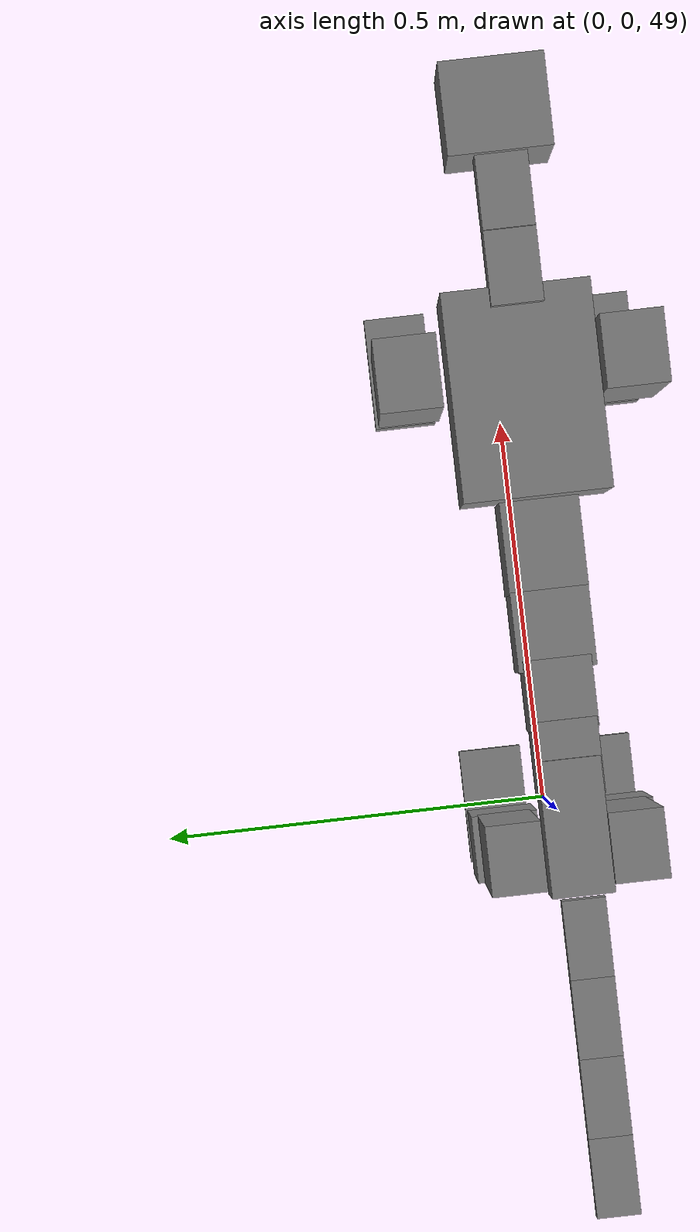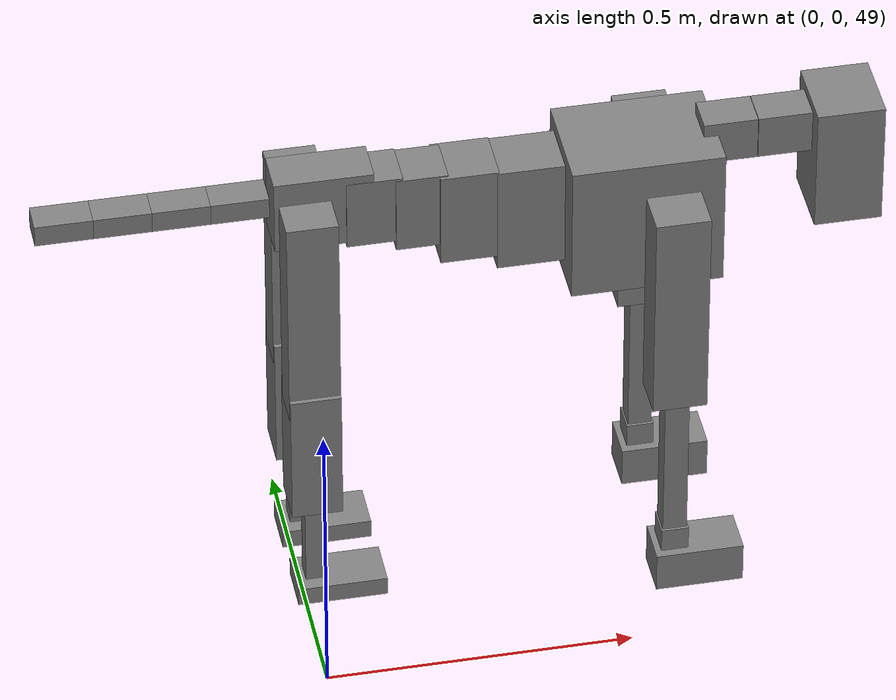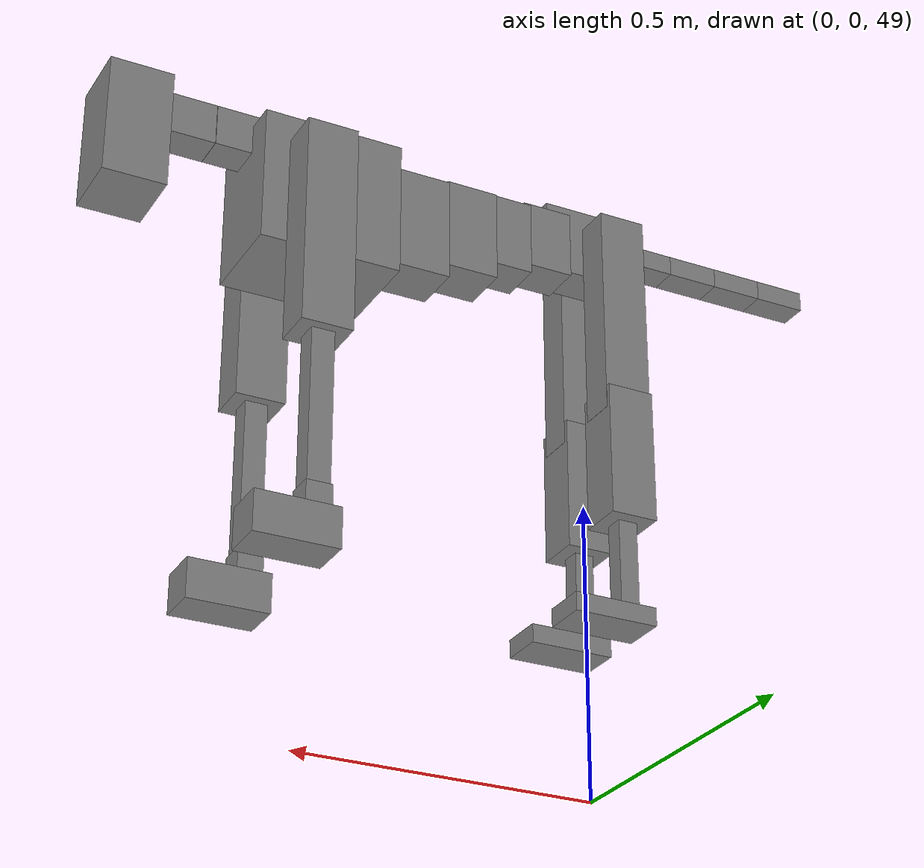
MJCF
<mujoco model="dog">

    <default>
        <joint armature="0.02" stiffness="1" damping="0.2" limited="true"/>
        <geom condim="3" friction="1 0.05 0.05" margin="0.01"/>
        <motor ctrllimited="true" ctrlrange="-1.0 1.0" forcelimited="true" gear="50"/>
    </default>

    <compiler inertiafromgeom="true" angle="radian"/>

    <option timestep="0.016" iterations="50" tolerance="1e-10" solver="Newton" jacobian="dense" cone="pyramidal"/>

    <size nconmax="20000" njmax="60000" nstack="5000000"/>
    <visual>
        <map force="0.1" zfar="30"/>
        <rgba haze="0.15 0.25 0.35 1"/>
        <quality shadowsize="2048"/>
        <global offwidth="800" offheight="800"/>
    </visual>

    <asset>
        <texture type="skybox" builtin="gradient" rgb1="0.3 0.5 0.7" rgb2="0 0 0" width="512" height="512"/>
        <texture name="texplane" type="2d" builtin="checker" rgb1=".2 .3 .4" rgb2=".1 0.15 0.2" width="512" height="512"
                 mark="cross" markrgb=".8 .8 .8"/>
        <texture name="texgeom" type="cube" builtin="flat" mark="cross" width="127" height="1278" rgb1="0.8 0.6 0.4"
                 rgb2="0.8 0.6 0.4" markrgb="1 1 1" random="0.01"/>

        <material name="matplane" reflectance="0.3" texture="texplane" texrepeat="1 1" texuniform="true"/>
        <material name="matgeom" texture="texgeom" texuniform="true" rgba="0.8 0.6 .4 1"/>
    </asset>

    <worldbody>
        <geom name="floor" pos="0 0 0" size="0 0 .25" type="plane" material="matplane" condim="3"/>

        <light directional="false" diffuse=".2 .2 .2" specular="0 0 0" pos="0 0 5" dir="0 0 -1" castshadow="false"/>
        <light mode="targetbodycom" target="torso" directional="false" diffuse=".8 .8 .8" specular="0.3 0.3 0.3"
               pos="0 0 4.0" dir="0 0 -1"/>

        <body name="root" pos="0 0 50">
            <freejoint name="root_1"/>
            <geom type="box" pos="0 0 -0.02" size="0.0774  0.0358  0.063" density="2030"/>

            <body name="spine1" pos="0.054 0 0">
                <joint name="spine1_y" axis="0 1 0" range="0 0.7" limited="true"/>
                <geom type="box" pos="0.02375 0 -0.03" size="0.04375  0.0375  0.05985" density="2030"/>

                <body name="spine2" pos="0.0612 0 0">
                    <joint name="spine2_y" axis="0 1 0" range="-0.15 0.15" limited="true"/>
                    <geom type="box" pos="0.03555  0  -0.04" size="0.04055  0.039  0.06615" density="2030"/>

                    <body name="spine3" pos="0.0730 0 0">
                        <joint name="spine3_y" axis="0 1 0" range="-0.15 0.15" limited="true"/>
                        <geom type="box" pos="0.03555  0  -0.057" size="0.04555  0.0445  0.081" density="2030"/>

                        <body name="spine4" pos="0.0780 0 0">
                            <joint name="spine4_y" axis="0 1 0" range="-0.15 0.15" limited="true"/>
                            <geom type="box" pos="0.05265  0  -0.07" size="0.05265  0.045  0.09135" density="2030"/>

                            <body name="torso" pos="0.1082 0 0">
                                <joint name="torso_y" axis="0 1 0" range="-0.15 0.15" limited="true"/>
                                <geom type="box" pos="0.11925  0  -0.085" size="0.11925  0.085  0.11745"
                                      density="2030"/>

                                <body name="neck1" pos="0.2160  0   0.0180">
                                    <joint name="neck1_y" axis="0 1 0" range="-1.2  -1" limited="true"/>
                                    <geom type="box" pos="0.0423  0  0" size="0.0423  0.03  0.036" density="2325"/>

                                    <body name="neck2" pos="0.0853  0  0">
                                        <joint name="neck2_y" axis="0 1 0" range="0.1  0" limited="true"/>
                                        <geom type="box" pos="0.0423  0  0" size="0.0423  0.03  0.036" density="2325"/>

                                        <body name="head" pos="0.0853  0  0">
                                            <joint name="head_y" axis="0 1 0" range="-0.3  -0.2" limited="true"/>
                                            <geom type="box" pos="0.0531  0  -0.055" size="0.0531  0.06  0.1044"
                                                  density="4030"/>

                                        </body>
                                    </body>
                                </body>

                                <body name="front_shoulder" pos="0.156  0   -0.0480">
                                    <joint name="front_shoulder_y" axis="0 1 0" range="-1 1.5" limited="true"/>
                                    <geom type="box" pos="0 0.13 -0.1549" size="0.0428  0.0366  0.1816" density="1158"/>
                                    <geom type="box" pos="0 -0.13 -0.1549" size="0.0428  0.0366  0.1816"
                                          density="1158"/>

                                    <body name="front_elbow" pos="0  0  -0.3099">
                                        <joint name="front_elbow_y" axis="0 1 0" range="-2 0" limited="true"/>
                                        <geom type="box" pos="0 0.13 -0.1490" size="0.0192  0.0197  0.1490"
                                              density="1081"/>
                                        <geom type="box" pos="0 -0.13 -0.1490" size="0.0192  0.0197  0.1490"
                                              density="1081"/>

                                        <body name="front_wrist" pos="0  0  -0.2981">
                                            <joint name="front_wrist_y" axis="0 1 0" range="-0.2 0" limited="true"/>
                                            <geom type="box" pos="0 0.13 -0.0211" size="0.0217  0.0241  0.0342"
                                                  density="1664"/>
                                            <geom type="box" pos="0 -0.13 -0.0211" size="0.0217  0.0241  0.0342"
                                                  density="1664"/>

                                            <body name="front_finger_end" pos="0  0  -0.0421">
                                                <joint name="front_finger_y" axis="0 1 0" range="-0.4 1"
                                                       limited="true"/>
                                                <geom type="box" pos="0.0379  0.13  -0.0186"
                                                      size="0.0695  0.0379  0.0336" density="1515"/>
                                                <geom type="box" pos="0.0379  -0.13  -0.0186"
                                                      size="0.0695  0.0379  0.0336" density="1515"/>

                                            </body>

                                        </body>
                                    </body>
                                </body>

                            </body>
                        </body>
                    </body>
                </body>
            </body>

            <body name="back_hip" pos="-0.03 0 -0.018">
                <joint name="back_hip_y" axis="0 1 0" range="-1.5 0.3" limited="true"/>
                <geom type="box" pos="0 0.07 -0.1624" size="0.0404  0.0317  0.1852" density="1154"/>
                <geom type="box" pos="0 -0.07 -0.1624" size="0.0404  0.0317  0.1852" density="1154"/>

                <body name="back_knee" pos="0  0  -0.3247">
                    <joint name="back_knee_y" axis="0 1 0" range="0 2.8" limited="true"/>
                    <geom type="box" pos="0 0.07 -0.0987" size="0.0400  0.0394  0.1143" density="1227"/>
                    <geom type="box" pos="0 -0.07 -0.0987" size="0.0400  0.0394  0.1143" density="1227"/>

                    <body name="back_ankle" pos="0  0  -0.1975">
                        <joint name="back_ankle_y" axis="0 1 0" range="-2.2 0" limited="true"/>
                        <geom type="box" pos="0 0.07 -0.0910" size="0.0163  0.0163  0.1023" density="1284"/>
                        <geom type="box" pos="0 -0.07 -0.0910" size="0.0163  0.0163  0.1023" density="1284"/>

                        <body name="back_toe_end" pos="0  0  -0.1820">
                            <joint name="back_toe_y" axis="0 1 0" range="-0.4 1" limited="true"/>
                            <geom type="box" pos="0.0387  0.07  -0.0006" size="0.0710  0.0387  0.0156" density="1515"/>
                            <geom type="box" pos="0.0387  -0.07  -0.0006" size="0.0710  0.0387  0.0156" density="1515"/>

                        </body>
                    </body>
                </body>
            </body>

            <body name="tail1" pos="-0.074 0 -0.006">
                <joint name="tail1_y" axis="0 1 0" range="-0.2 0.2" limited="true"/>
                <geom type="box" pos="-0.0536  0  0" size="0.045  0.025  0.0175" density="1587"/>

                <body name="tail2" pos="-0.09 0 0">
                    <joint name="tail2_y" axis="0 1 0" range="-0.2 0.2" limited="true"/>
                    <geom type="box" pos="-0.0536  0  0" size="0.045  0.025  0.0175" density="1587"/>

                    <body name="tail3" pos="-0.09 0 0">
                        <joint name="tail3_y" axis="0 1 0" range="-0.2 0.2" limited="true"/>
                        <geom type="box" pos="-0.0536  0  0" size="0.045  0.025  0.0175" density="1587"/>

                        <body name="tail4" pos="-0.09 0 0">
                            <joint name="tail4_y" axis="0 1 0" range="-0.2 0.2" limited="true"/>
                            <geom type="box" pos="-0.0536  0  0" size="0.045  0.025  0.0175" density="1587"/>

                        </body>
                    </body>
                </body>
            </body>
        </body>
    </worldbody>

    <actuator>
        <motor joint="spine1_y" forcerange="-150 150     "/>
        <motor joint="spine2_y" forcerange="-150 150     "/>
        <motor joint="spine3_y" forcerange="-150 150     "/>
        <motor joint="spine4_y" forcerange="-150 150     "/>
        <motor joint="torso_y" forcerange="-150 150     "/>
        <motor joint="neck1_y" forcerange="-100 100       "/>
        <motor joint="neck2_y" forcerange="-100 100       "/>
        <motor joint="head_y" forcerange="-150 150       "/>
        <motor joint="front_shoulder_y" forcerange="-177.42 166.47"/>
        <motor joint="front_elbow_y" forcerange="-119.83 123.09"/>
        <motor joint="front_wrist_y" forcerange="-90.32 102.55"/>
        <motor joint="front_finger_y" forcerange="-67.50 94.83"/>
        <motor joint="back_hip_y" forcerange="-381.40 240.83"/>
        <motor joint="back_knee_y" forcerange="-384.59 388.23"/>
        <motor joint="back_angle_y" forcerange="-57.35 103.00"/>
        <motor joint="back_toe_y" forcerange="-104.21 125.73"/>
        <motor joint="tail1_y" forcerange="-50 50     "/>
        <motor joint="tail2_y" forcerange="-50 50     "/>
        <motor joint="tail3_y" forcerange="-50 50     "/>
        <motor joint="tail4_y" forcerange="-50 50     "/>
    </actuator>
</mujoco>
